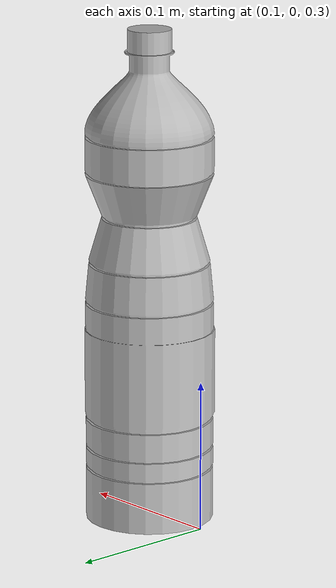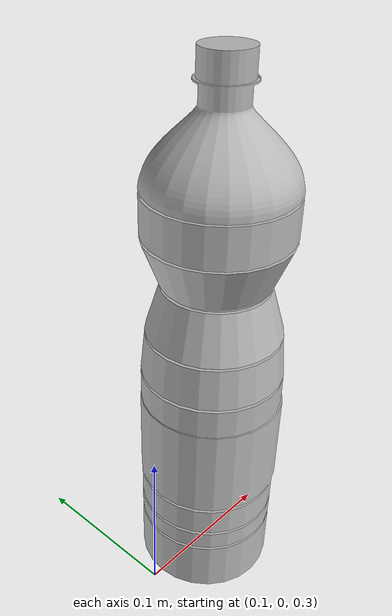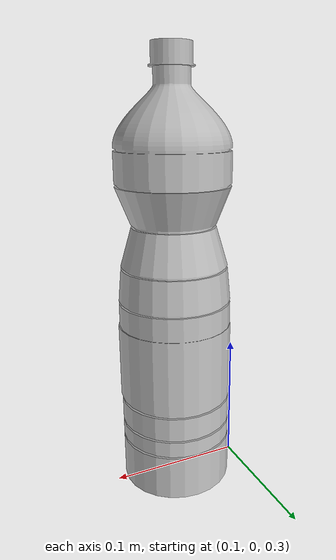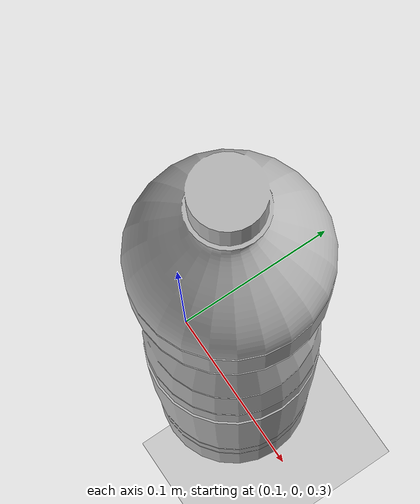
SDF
<?xml version="1.0" ?>
<sdf version="1.4">
  <world name="default">
    <physics type="ode">
      <gravity>0 0 -9.81</gravity>
      <ode>
        <solver>
          <type>quick</type>
          <iters>20</iters>
          <sor>1.0</sor>
        </solver>
        <constraints>
          <cfm>0.0</cfm>
          <erp>0.2</erp>
          <contact_max_correcting_vel>100.0</contact_max_correcting_vel>
          <contact_surface_layer>0.0</contact_surface_layer>
        </constraints>
      </ode>
      <real_time_update_rate>1000</real_time_update_rate>
      <max_step_size>0.001</max_step_size>
    </physics>
    <!-- A global light source -->
    <include>
      <uri>model://sun</uri>
    </include>
    <!-- A ground plane -->
    <include>
      <uri>model://ground_plane</uri>
    </include>
    <!-- Can on the ground -->
    <include>
      <uri>model://water_bottle</uri>
      <name>water_bottle1</name>
      <pose>0.15 0 0.3 0 0 0</pose>
    </include>
  </world>
</sdf>

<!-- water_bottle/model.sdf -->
<sdf version="1.4">
  <model name="water_bottle">
    <static>True</static>
    <link name="link">
      <inertial>
        <!-- https://en.wikipedia.org/wiki/List_of_moments_of_inertia -->
        <mass>1.5</mass> <!-- approx weight of a 1.5L filled bottle -->
        <inertia>
          <ixx>0.01185</ixx>
          <ixy>0</ixy>
          <ixz>0</ixz>
          <iyy>0.01185</iyy>
          <iyz>0</iyz>
          <izz>0.0002</izz>
        </inertia>
      </inertial>
      <collision name="collision">
        <pose>0 0 0.1525 0 0 0</pose>
        <geometry>
          <cylinder>
            <radius>0.04</radius>
            <length>0.3</length>
          </cylinder>
        </geometry>
        <surface>
          <bounce />
          <friction>
            <ode />
          </friction>
          <contact>
            <ode />
          </contact>
        </surface>
      </collision>
      <visual name="visual">
        <pose>0 0 0.1625 0 0 0</pose>
        <geometry>
          <mesh>
            <uri>model://water_bottle/mesh/model.dae</uri>
          </mesh>
        </geometry>
      </visual>
    </link>
  </model>
</sdf>
